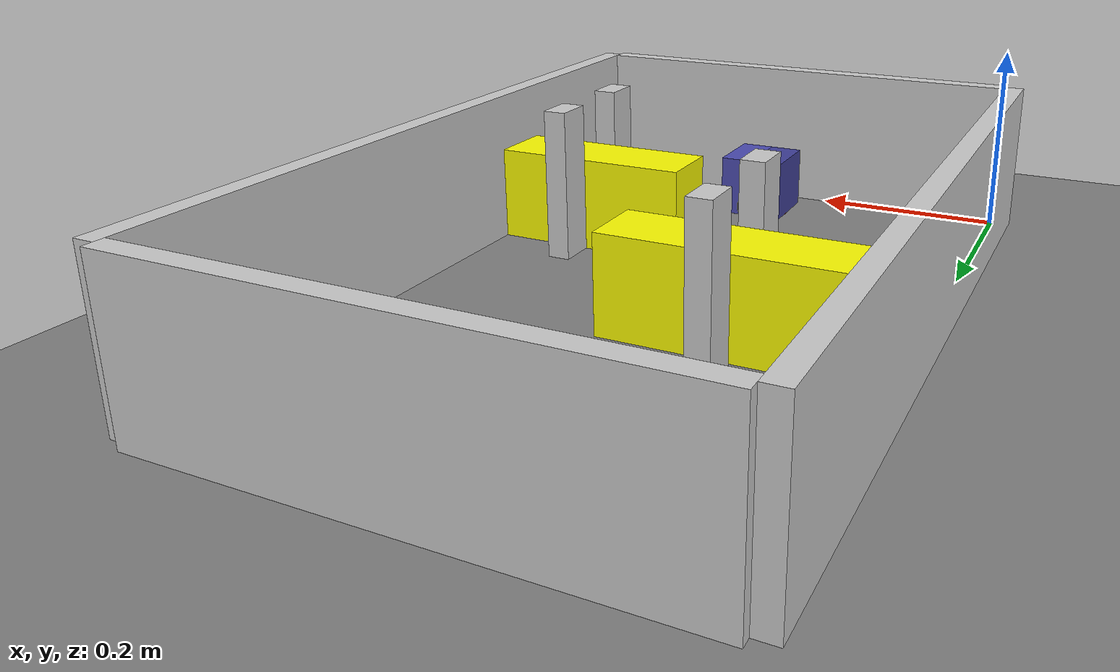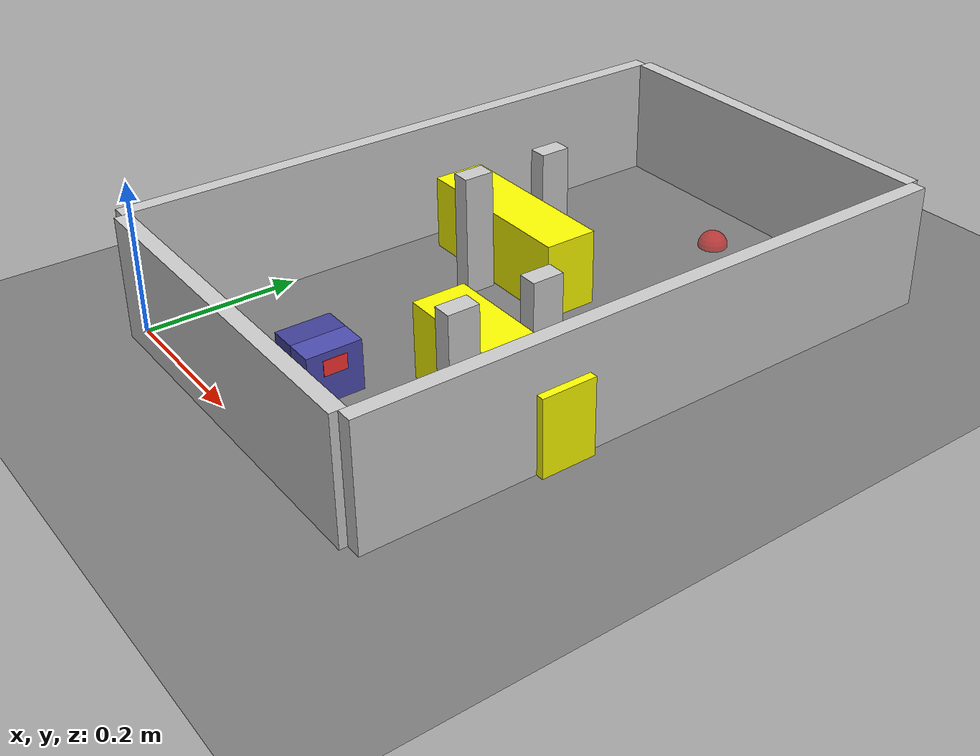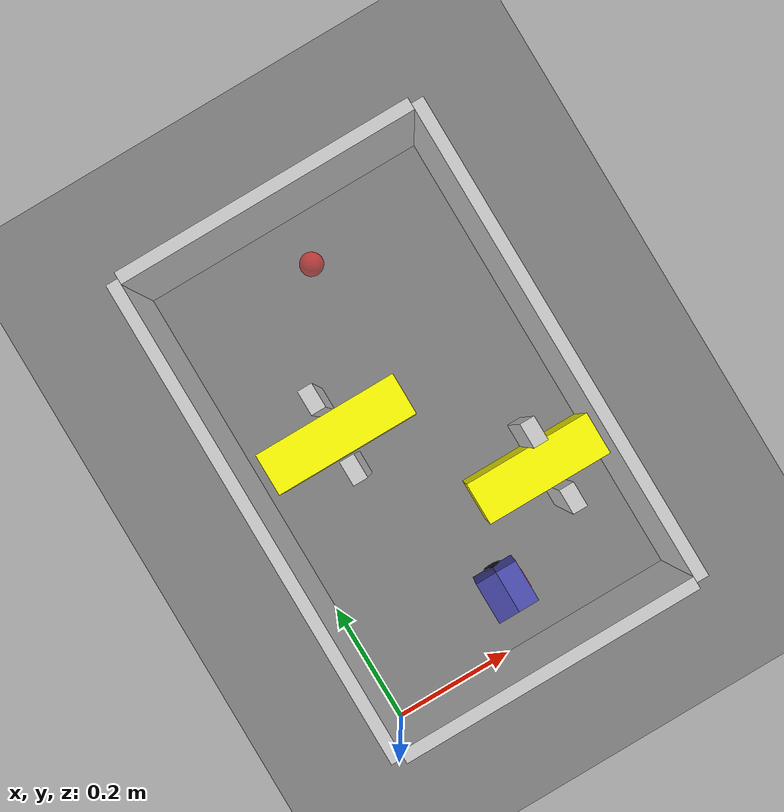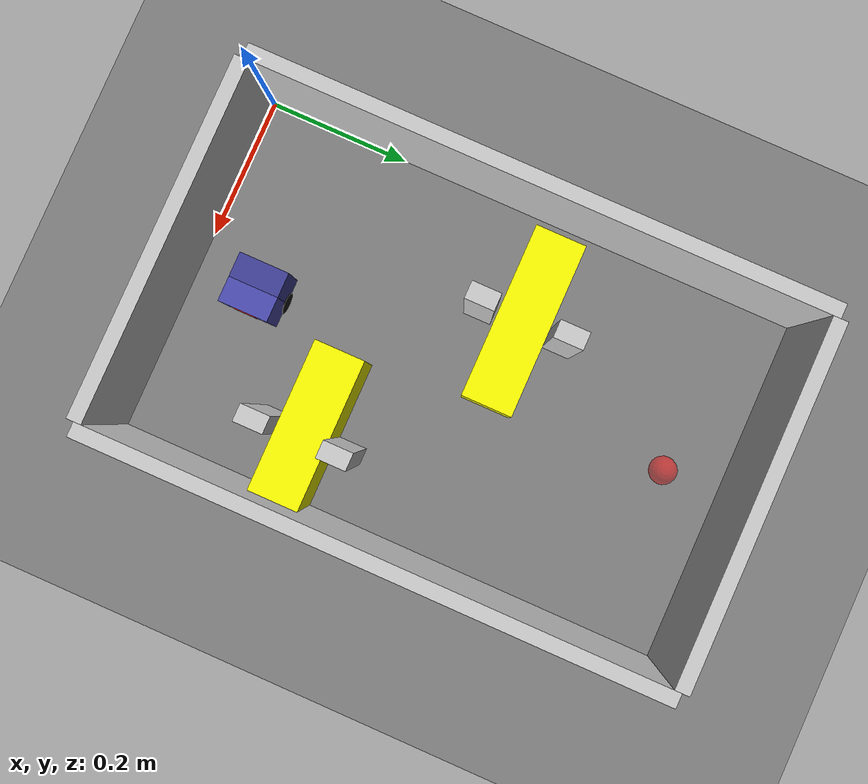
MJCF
<?xml version="1.0"?>
<mujoco model="rotation_jam_car_fixture">
  <option timestep="0.002" integrator="implicitfast" cone="elliptic" iterations="100" gravity="0 0 -9.81"/>
  <default>
    <geom density="1"/>
  </default>
  <worldbody>
    <light dir="0 0 -1" directional="true" pos="0 0 1.5"/>
    <geom condim="4" friction="0.5 0.005 0.001" name="floor" size="0 0 0.05" type="plane"/>
    <body name="walls">
      <geom name="wall_1" condim="4" type="box" pos="-0.01 0.39 0.08" size="0.01 0.40 0.08" rgba="0.8 0.8 0.8 1"/>
      <geom name="wall_2" condim="4" type="box" pos="0.50 0.39 0.08" size="0.01 0.40 0.08" rgba="0.8 0.8 0.8 1"/>
      <geom name="wall_3" condim="4" type="box" pos="0.245 -0.01 0.08" size="0.245 0.01 0.08" rgba="0.8 0.8 0.8 1"/>
      <geom name="wall_4" condim="4" type="box" pos="0.245 0.79 0.08" size="0.245 0.01 0.08" rgba="0.8 0.8 0.8 1"/>
      <geom name="pivot_a_top" condim="4" type="box" pos="0.15 0.499 0.08" size="0.012 0.02 0.08" rgba="0.8 0.8 0.8 1"/>
      <geom name="pivot_a_bottom" condim="4" type="box" pos="0.15 0.381 0.08" size="0.012 0.02 0.08" rgba="0.8 0.8 0.8 1"/>
      <geom name="pivot_b_top" condim="4" type="box" pos="0.40 0.29505 0.08" size="0.012 0.02 0.08" rgba="0.8 0.8 0.8 1"/>
      <geom name="pivot_b_bottom" condim="4" type="box" pos="0.40 0.18495 0.08" size="0.012 0.02 0.08" rgba="0.8 0.8 0.8 1"/>
    </body>
    <body name="car" pos="0.25 0.10 0.010000">
      <freejoint name="car_freejoint" />
      <inertial pos="0.000000 0 0.037500" mass="0.350000" diaginertia="0.000266 0.000266 0.000286" />
      <geom name="front_chassis_collision" type="box" pos="0.017500 0 0.037500" size="0.017500 0.035000 0.032500" rgba="0.3 0.3 0.7 1" />
      <geom name="rear_chassis_collision" type="box" pos="-0.017500 0 0.037500" size="0.017500 0.035000 0.032500" rgba="0.25 0.25 0.6 1" />
      <geom name="front_marker" type="box" pos="0.034000 0 0.050500" size="0.002000 0.015000 0.010000" rgba="1.0 0.2 0.2 1" contype="0" conaffinity="0" />
      <body name="rear_support_body" pos="-0.030000 0.000000 0.002500">
        <joint name="rear_caster_joint" type="ball" damping="0.0001" />
        <inertial pos="0 0 0" mass="0.025000" diaginertia="0.000001 0.000001 0.000001" />
        <geom name="rear_support" type="sphere" pos="0 0 0" size="0.002500" friction="0.000000 0.000000 0.000000" rgba="0.7 0.1 0.1 1" />
      </body>
      <body name="front_support_body" pos="0.030000 0.000000 0.002500">
        <joint name="front_caster_joint" type="ball" damping="0.0001" />
        <inertial pos="0 0 0" mass="0.025000" diaginertia="0.000001 0.000001 0.000001" />
        <geom name="front_support" type="sphere" pos="0 0 0" size="0.002500" friction="0.000000 0.000000 0.000000" rgba="0.1 0.7 0.1 1" />
      </body>
      <body name="left_wheel" pos="0.000000 0.037500 0.015000">
        <inertial pos="0 0 0" mass="0.050000" diaginertia="0.000003 0.000006 0.000003" />
        <joint name="left_wheel_joint" type="hinge" axis="0 1 0" damping="0.01" armature="0.0001" />
        <geom name="left_wheel_collision" type="cylinder" size="0.015000 0.000500" euler="90 0 0" rgba="0.1 0.1 0.1 1" />
      </body>
      <body name="right_wheel" pos="0.000000 -0.037500 0.015000">
        <inertial pos="0 0 0" mass="0.050000" diaginertia="0.000003 0.000006 0.000003" />
        <joint name="right_wheel_joint" type="hinge" axis="0 1 0" damping="0.01" armature="0.0001" />
        <geom name="right_wheel_collision" type="cylinder" size="0.015000 0.000500" euler="90 0 0" rgba="0.1 0.1 0.1 1" />
      </body>
    </body>
    <body name="obstacle_1_movable">
      <geom name="obstacle_1_movable" condim="4" type="box" pos="0.15 0.44 0.05" size="0.12 0.035 0.05" euler="0 0 0"
            friction="1 0.005 0.0001" rgba="1 1 0 1" mass="0.1"/>
      <joint type="free"/>
    </body>
    <body name="obstacle_2_movable">
      <geom name="obstacle_2_movable" condim="4" type="box" pos="0.40 0.24 0.05" size="0.12 0.035 0.05" euler="0 0 0"
            friction="1 0.005 0.0001" rgba="1 1 0 1" mass="0.1"/>
      <joint type="free"/>
    </body>
    <site name="goal" type="sphere" pos="0.25 0.70 0.0" size="0.02" rgba="1 0 0 0.5"/>
  </worldbody>
  <actuator>
    <velocity name="left_wheel_drive" joint="left_wheel_joint" ctrlrange="-25.000000 25.000000" kv="0.750000" forcerange="-0.500000 0.500000" />
    <velocity name="right_wheel_drive" joint="right_wheel_joint" ctrlrange="-25.000000 25.000000" kv="0.750000" forcerange="-0.500000 0.500000" />
  </actuator>
</mujoco>
